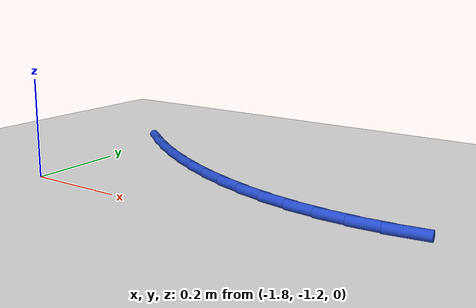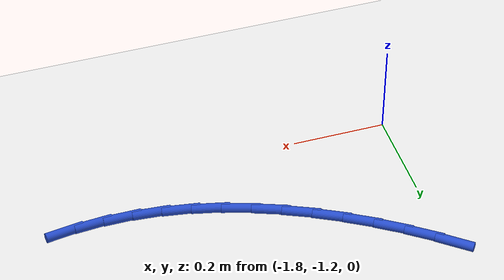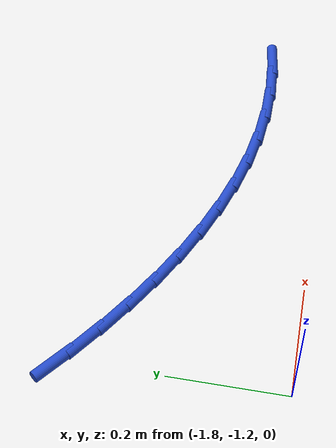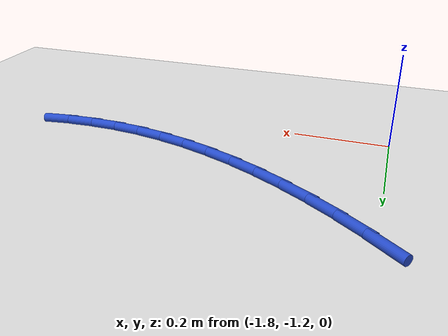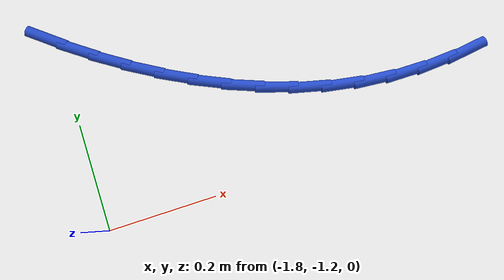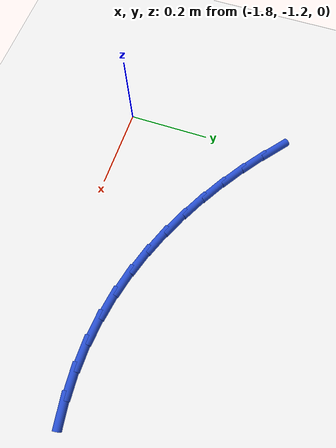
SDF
<sdf version="1.6">
 <world name="default">
  <model name="ground_plane">
   <static>1</static>
   <link name="link">
    <collision name="collision">
     <geometry><plane><normal>0 0 1</normal><size>100 100</size></plane></geometry>
     <surface><friction><ode><mu>100</mu><mu2>50</mu2></ode></friction></surface>
    </collision>
    <visual name="visual">
     <cast_shadows>0</cast_shadows>
     <geometry><plane><normal>0 0 1</normal><size>100 100</size></plane></geometry>
     <material>
      <script><uri>file://media/materials/scripts/gazebo.material</uri><name>Gazebo/WhiteGlow</name></script>
     </material>
    </visual>
   </link>
  </model>
  <model name="line">
   <link name="link_70">
    <pose>-1.811849187687866 -0.8240914768536302 0.01 0 1.57 -0.6713589866017743</pose>
    <collision name="collision">
     <geometry><cylinder><radius>0.01</radius><length>0.08</length></cylinder></geometry>
    </collision>
    <visual name="visual">
     <material>
      <script><name>Gazebo/Blue</name><uri>file://media/materials/scripts/gazebo.material</uri></script>
     </material>
     <geometry><cylinder><radius>0.01</radius><length>0.08</length></cylinder></geometry>
    </visual>
   </link>
   <link name="link_71">
    <pose>-1.7619924475455244 -0.8637010882750509 0.01 0 1.57 -0.6229489775277356</pose>
    <collision name="collision">
     <geometry><cylinder><radius>0.01</radius><length>0.08</length></cylinder></geometry>
    </collision>
    <visual name="visual">
     <material>
      <script><name>Gazebo/Blue</name><uri>file://media/materials/scripts/gazebo.material</uri></script>
     </material>
     <geometry><cylinder><radius>0.01</radius><length>0.08</length></cylinder></geometry>
    </visual>
   </link>
   <link name="link_72">
    <pose>-1.71030708811211 -0.9008303197499815 0.01 0 1.57 -0.5752699493710628</pose>
    <collision name="collision">
     <geometry><cylinder><radius>0.01</radius><length>0.08</length></cylinder></geometry>
    </collision>
    <visual name="visual">
     <material>
      <script><name>Gazebo/Blue</name><uri>file://media/materials/scripts/gazebo.material</uri></script>
     </material>
     <geometry><cylinder><radius>0.01</radius><length>0.08</length></cylinder></geometry>
    </visual>
   </link>
   <link name="link_73">
    <pose>-1.65707130469262 -0.935349939157088 0.01 0 1.57 -0.5271686264464144</pose>
    <collision name="collision">
     <geometry><cylinder><radius>0.01</radius><length>0.08</length></cylinder></geometry>
    </collision>
    <visual name="visual">
     <material>
      <script><name>Gazebo/Blue</name><uri>file://media/materials/scripts/gazebo.material</uri></script>
     </material>
     <geometry><cylinder><radius>0.01</radius><length>0.08</length></cylinder></geometry>
    </visual>
   </link>
   <link name="link_74">
    <pose>-1.6025320143271577 -0.9670983465611251 0.01 0 1.57 -0.47615342187539644</pose>
    <collision name="collision">
     <geometry><cylinder><radius>0.01</radius><length>0.08</length></cylinder></geometry>
    </collision>
    <visual name="visual">
     <material>
      <script><name>Gazebo/Blue</name><uri>file://media/materials/scripts/gazebo.material</uri></script>
     </material>
     <geometry><cylinder><radius>0.01</radius><length>0.08</length></cylinder></geometry>
    </visual>
   </link>
   <link name="link_75">
    <pose>-1.5468438765392243 -0.9958184708061796 0.01 0 1.57 -0.4214243136424328</pose>
    <collision name="collision">
     <geometry><cylinder><radius>0.01</radius><length>0.08</length></cylinder></geometry>
    </collision>
    <visual name="visual">
     <material>
      <script><name>Gazebo/Blue</name><uri>file://media/materials/scripts/gazebo.material</uri></script>
     </material>
     <geometry><cylinder><radius>0.01</radius><length>0.08</length></cylinder></geometry>
    </visual>
   </link>
   <link name="link_76">
    <pose>-1.4901446244039487 -1.021235724671017 0.01 0 1.57 -0.36257310043457974</pose>
    <collision name="collision">
     <geometry><cylinder><radius>0.01</radius><length>0.08</length></cylinder></geometry>
    </collision>
    <visual name="visual">
     <material>
      <script><name>Gazebo/Blue</name><uri>file://media/materials/scripts/gazebo.material</uri></script>
     </material>
     <geometry><cylinder><radius>0.01</radius><length>0.08</length></cylinder></geometry>
    </visual>
   </link>
   <link name="link_77">
    <pose>-1.4325719909964647 -1.0430755209344036 0.01 0 1.57 -0.2992310670848939</pose>
    <collision name="collision">
     <geometry><cylinder><radius>0.01</radius><length>0.08</length></cylinder></geometry>
    </collision>
    <visual name="visual">
     <material>
      <script><name>Gazebo/Blue</name><uri>file://media/materials/scripts/gazebo.material</uri></script>
     </material>
     <geometry><cylinder><radius>0.01</radius><length>0.08</length></cylinder></geometry>
    </visual>
   </link>
   <link name="link_78">
    <pose>-1.3742637093919026 -1.061063272375105 0.01 0 1.57 -0.2311041438876115</pose>
    <collision name="collision">
     <geometry><cylinder><radius>0.01</radius><length>0.08</length></cylinder></geometry>
    </collision>
    <visual name="visual">
     <material>
      <script><name>Gazebo/Blue</name><uri>file://media/materials/scripts/gazebo.material</uri></script>
     </material>
     <geometry><cylinder><radius>0.01</radius><length>0.08</length></cylinder></geometry>
    </visual>
   </link>
   <link name="link_79">
    <pose>-1.315357512665394 -1.0749243917718858 0.01 0 1.57 -0.15801924887255606</pose>
    <collision name="collision">
     <geometry><cylinder><radius>0.01</radius><length>0.08</length></cylinder></geometry>
    </collision>
    <visual name="visual">
     <material>
      <script><name>Gazebo/Blue</name><uri>file://media/materials/scripts/gazebo.material</uri></script>
     </material>
     <geometry><cylinder><radius>0.01</radius><length>0.08</length></cylinder></geometry>
    </visual>
   </link>
   <link name="link_80">
    <pose>-1.2559911338920693 -1.0843842919035132 0.01 0 1.57 -0.07999270648823077</pose>
    <collision name="collision">
     <geometry><cylinder><radius>0.01</radius><length>0.08</length></cylinder></geometry>
    </collision>
    <visual name="visual">
     <material>
      <script><name>Gazebo/Blue</name><uri>file://media/materials/scripts/gazebo.material</uri></script>
     </material>
     <geometry><cylinder><radius>0.01</radius><length>0.08</length></cylinder></geometry>
    </visual>
   </link>
   <link name="link_81">
    <pose>-1.1963022940919426 -1.089169173989918 0.01 0 1.57 -5.218408782522209e-05</pose>
    <collision name="collision">
     <geometry><cylinder><radius>0.01</radius><length>0.08</length></cylinder></geometry>
    </collision>
    <visual name="visual">
     <material>
      <script><name>Gazebo/Blue</name><uri>file://media/materials/scripts/gazebo.material</uri></script>
     </material>
     <geometry><cylinder><radius>0.01</radius><length>0.08</length></cylinder></geometry>
    </visual>
   </link>
   <link name="link_82">
    <pose>-1.1364261599789192 -1.089172298571362 0.01 0 1.57 0.07515249009855977</pose>
    <collision name="collision">
     <geometry><cylinder><radius>0.01</radius><length>0.08</length></cylinder></geometry>
    </collision>
    <visual name="visual">
     <material>
      <script><name>Gazebo/Blue</name><uri>file://media/materials/scripts/gazebo.material</uri></script>
     </material>
     <geometry><cylinder><radius>0.01</radius><length>0.08</length></cylinder></geometry>
    </visual>
   </link>
   <link name="link_83">
    <pose>-1.076492199949807 -1.084659613306278 0.01 0 1.57 0.14451959180633936</pose>
    <collision name="collision">
     <geometry><cylinder><radius>0.01</radius><length>0.08</length></cylinder></geometry>
    </collision>
    <visual name="visual">
     <material>
      <script><name>Gazebo/Blue</name><uri>file://media/materials/scripts/gazebo.material</uri></script>
     </material>
     <geometry><cylinder><radius>0.01</radius><length>0.08</length></cylinder></geometry>
    </visual>
   </link>
  </model>
 </world>
</sdf>
